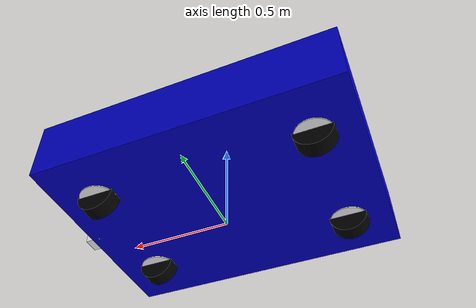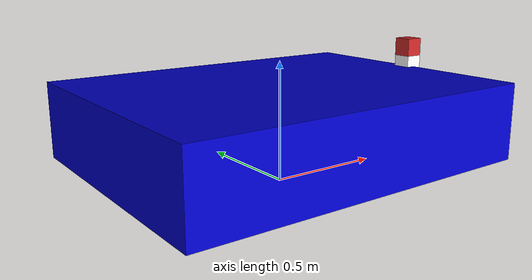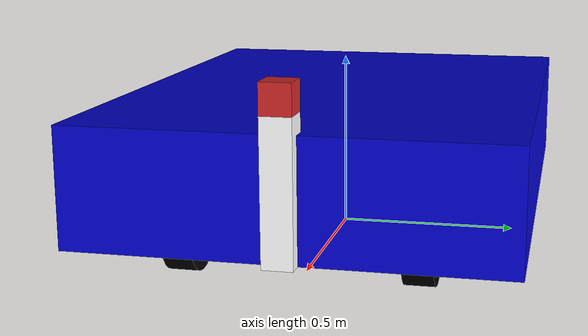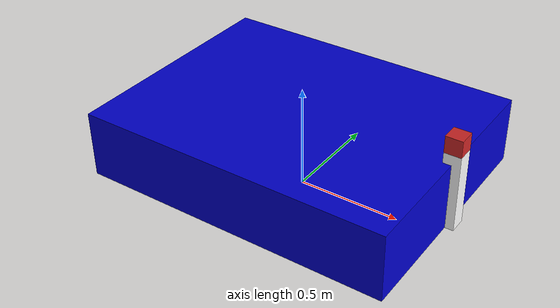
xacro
<robot name="robot" xmlns:xacro="http://ros.org/wiki/xacro">

    <xacro:property name="width" value="1.15" />
    <xacro:property name="length" value="1.50" />
    <xacro:property name="height" value="0.32" />
    <xacro:property name="stalk_height" value="${height+0.05}" />
    <xacro:property name="stalk_width" value="0.08" />
    <xacro:property name="wheel_diameter" value="0.19" />
    <xacro:property name="wheel_thickness" value="0.08" />
    <xacro:include filename="inertial_macros.xacro"/>

    <material name="blue">
        <color rgba="0 0 0.8 1"/>
    </material>
    <material name="black">
        <color rgba="0 0 0 1"/>
    </material>
    <material name="white">
        <color rgba="1 1 1 1"/>
    </material>

    <link name="base_footprint">
    </link>

    <link name="base_link">
        <visual>
            <geometry>
                <box size="${length} ${width} ${height}"/>
            </geometry>
            <material name="blue"/>
        </visual>
        <collision>
            <geometry>
                <box size="${length} ${width} ${height}"/>
            </geometry>
        </collision>
        <xacro:inertial_box mass="500" x="${length}" y="${width}" z="${height}">
            <origin xyz="0 0 0" rpy="0 0 0"/>
        </xacro:inertial_box>
    </link>
    <gazebo reference="base_link">
        <material>Gazebo/Blue</material>
    </gazebo>

    <joint name="footprint_to_base" type="fixed">
        <parent link="base_footprint"/>
        <child link="base_link"/>
        <origin rpy="0 0 0" xyz="0 0 ${(height/2)+(wheel_diameter/2)}"/>
    </joint>

    <!--Stalk-->
    <link name="stalk">
        <visual>
            <origin xyz="0 0 ${stalk_height/2}"/>
            <geometry>
                <box size="${stalk_width} ${stalk_width} ${stalk_height}"/>
            </geometry>
            <material name="white"/>
        </visual>
        <collision>
            <origin xyz="0 0 ${stalk_height/2}"/>
            <geometry>
                <box size="${stalk_width} ${stalk_width} ${stalk_height}"/>
            </geometry>
        </collision>
    </link>
    <gazebo reference="stalk">
        <material>Gazebo/White</material>
    </gazebo>

    <link name="laser_link">
        <visual>
            <origin rpy="0 0 0" xyz="0 0 0.04"/>
            <geometry>
                <box size="0.08 0.08 0.08"/>
            </geometry>
        </visual>
    </link>
    <gazebo reference="laser_link">
        <material>Gazebo/Red</material>
    </gazebo>

    <joint name="base_to_stalk" type="fixed">
        <parent link="base_link"/>
        <child link="stalk"/>
        <origin xyz="${length/2} 0 -${height/2}"/>
    </joint>

    <joint name="stalk_to_laser" type="fixed">
        <parent link="stalk"/>
        <child link="laser_link"/>
        <origin rpy="0 0 0" xyz="0 0 ${stalk_height}"/>
    </joint>

    <!--Mounts-->
    <xacro:macro name="wheel" params="prefix suffix x y mode">

        <link name="${prefix}_${suffix}_mount">
            <visual>
                <origin xyz="0 0 0" rpy="0 0 0" />
                <geometry>
                    <cylinder radius="${wheel_diameter/2}" length="0.01"/>
                </geometry>
                <material name="white"/>
            </visual>
            <collision>
                <origin xyz="0 0 0" rpy="0 0 0" />
                <geometry>
                    <cylinder radius="${wheel_diameter/2}" length="0.01"/>
                </geometry>
            </collision>
            <inertial>
                <mass value="1.0"/>
                <inertia ixx="1.0" ixy="0.0" ixz="0.0" iyy="1.0" iyz="0.0" izz="1.0"/>
            </inertial>
        </link>
        <joint name="${prefix}_${suffix}_mount_joint" type="${mode}">
            <axis xyz="0 0 1" rpy="0 0 0" />
            <parent link="base_link"/>
            <child link="${prefix}_${suffix}_mount"/>
            <origin xyz="${x} ${y} -${height/2}" rpy="0 0 0"/>
        </joint>

        <link name="${prefix}_${suffix}_wheel">
            <visual>
                <origin xyz="0 0 0" rpy="${pi/2} 0 0" />
                <geometry>
                    <cylinder radius="${wheel_diameter/2}" length="${wheel_thickness}"/>
                </geometry>
                <material name="black"/>
            </visual>
            <collision>
                <origin xyz="0 0 0" rpy="${pi/2} 0 0" />
                <geometry>
                    <cylinder radius="${wheel_diameter/2}" length="${wheel_thickness}"/>
                </geometry>
            </collision>
            <inertial>
                <mass value="1.0"/>
                <inertia ixx="1.0" ixy="0.0" ixz="0.0" iyy="1.0" iyz="0.0" izz="1.0"/>
            </inertial>
        </link>
        <gazebo reference="${prefix}_${suffix}_wheel">
            <material>Gazebo/Black</material>
        </gazebo>
        <joint name="${prefix}_${suffix}_wheel_joint" type="continuous">
            <axis xyz="0 1 0" rpy="0 0 0" />
            <parent link="${prefix}_${suffix}_mount"/>
            <child link="${prefix}_${suffix}_wheel"/>
            <origin xyz="0 0 0" rpy="0 0 0"/>
        </joint>

    </xacro:macro>
    <xacro:wheel prefix="front" suffix="left" x="0.54" y="0.31" mode="continuous"/>
    <xacro:wheel prefix="front" suffix="right" x="0.54" y="-0.31" mode="continuous"/>
    <xacro:wheel prefix="back" suffix="left" x="-0.54" y="0.31" mode="fixed"/>
    <xacro:wheel prefix="back" suffix="right" x="-0.54" y="-0.31" mode="fixed"/>

    <gazebo>
        <plugin name="joint_state" filename="libgazebo_ros_joint_state_publisher.so">
            <ros>
            </ros>
            <update_rate>60</update_rate>
            <joint_name>front_left_wheel_joint</joint_name>
            <joint_name>front_right_wheel_joint</joint_name>
            <joint_name>back_left_wheel_joint</joint_name>
            <joint_name>back_right_wheel_joint</joint_name>
            <joint_name>front_left_mount_joint</joint_name>
            <joint_name>front_right_mount_joint</joint_name>
            <joint_name>back_left_mount_joint</joint_name>
            <joint_name>back_right_mount_joint</joint_name>
        </plugin>
        <plugin name="gazebo_ros_joint_pose_trajectory"
                filename="libgazebo_ros_joint_pose_trajectory.so">
            <ros>
            </ros>
            <update_rate>60</update_rate>
        </plugin>
    </gazebo>

    <gazebo reference="laser_link">
        <sensor type="ray" name="lms111">
            <always_on>true</always_on>
            <pose>0 0 0 0 0 0</pose>
            <visualize>true</visualize>
            <update_rate>8</update_rate>
            <ray>
                <scan>
                    <horizontal>
                        <samples>720</samples>
                        <resolution>2</resolution>
                        <min_angle>-2.356194490192345</min_angle>
                        <max_angle>2.356194490192345</max_angle>
                    </horizontal>
                </scan>
                <range>
                    <min>0.50</min>
                    <max>20.0</max>
                    <resolution>0.01</resolution>
                </range>
                <noise>
                    <type>gaussian</type>
                    <mean>0.0</mean>
                    <stddev>0.005</stddev>
                </noise>
            </ray>
            <plugin name="gazebo_ros_lms1xx_controller" filename="libgazebo_ros_ray_sensor.so">
                <ros>
                    <argument>~/out:=scan</argument>
                </ros>
                <output_type>sensor_msgs/LaserScan</output_type>
                <frame_name>laser_link</frame_name>
            </plugin>
        </sensor>
    </gazebo>

    <gazebo>

        <plugin name='ackermann_drive' filename='libgazebo_ros_ackermann_drive.so'>

            <update_rate>100.0</update_rate>

            <!-- wheels -->
            <front_left_joint>front_left_wheel_joint</front_left_joint>
            <front_right_joint>front_right_wheel_joint</front_right_joint>
            <rear_left_joint>back_left_wheel_joint</rear_left_joint>
            <rear_right_joint>back_right_wheel_joint</rear_right_joint>
            <left_steering_joint>front_left_mount_joint</left_steering_joint>
            <right_steering_joint>front_right_mount_joint</right_steering_joint>

            <!-- Max absolute steer angle for tyre in radians-->
            <!-- Any cmd_vel angular z greater than this would be capped -->
            <max_steer>0.6458</max_steer>

            <!-- Max absolute steering angle of steering wheel -->
            <max_steering_angle>7.85</max_steering_angle>

            <!-- Max absolute linear speed in m/s -->
            <max_speed>20</max_speed>

            <!-- PID tuning -->
            <left_steering_pid_gain>1500 0 1</left_steering_pid_gain>
            <left_steering_i_range>0 0</left_steering_i_range>
            <right_steering_pid_gain>1500 0 1</right_steering_pid_gain>
            <right_steering_i_range>0 0</right_steering_i_range>
            <linear_velocity_pid_gain>1000 0 1</linear_velocity_pid_gain>
            <linear_velocity_i_range>0 0</linear_velocity_i_range>

            <!-- output -->
            <publish_odom>true</publish_odom>
            <publish_odom_tf>true</publish_odom_tf>
            <publish_wheel_tf>true</publish_wheel_tf>
            <publish_distance>true</publish_distance>

            <odometry_frame>odom</odometry_frame>
            <robot_base_frame>base_footprint</robot_base_frame>

        </plugin>
    </gazebo>

</robot>
